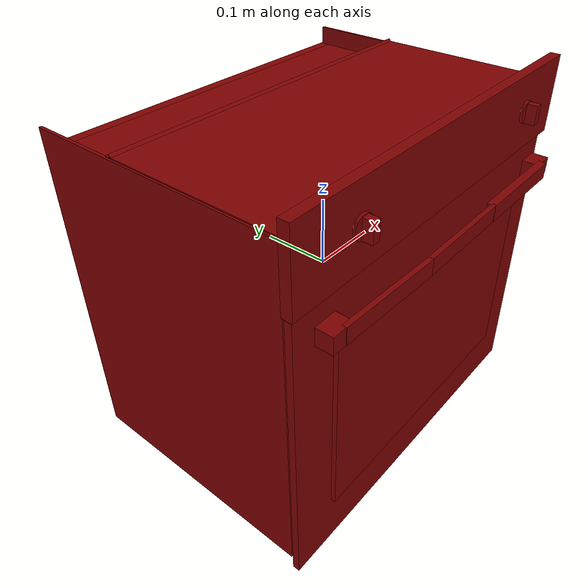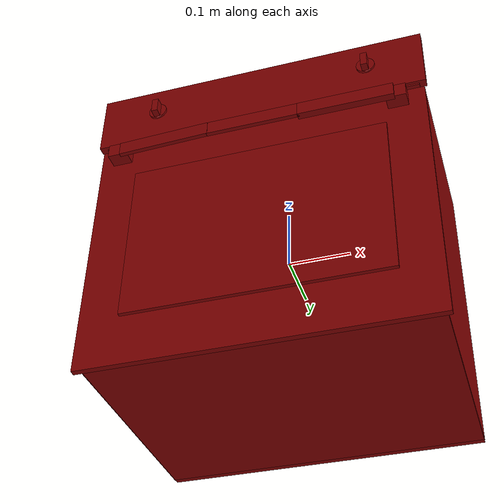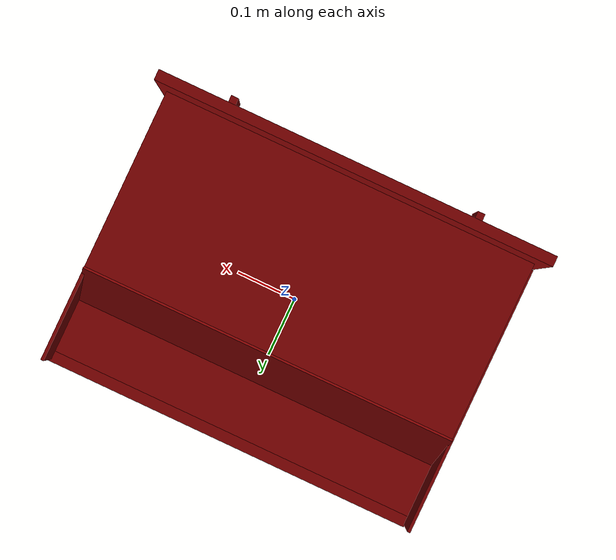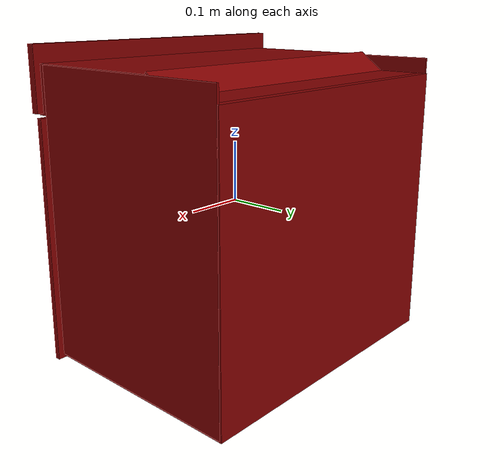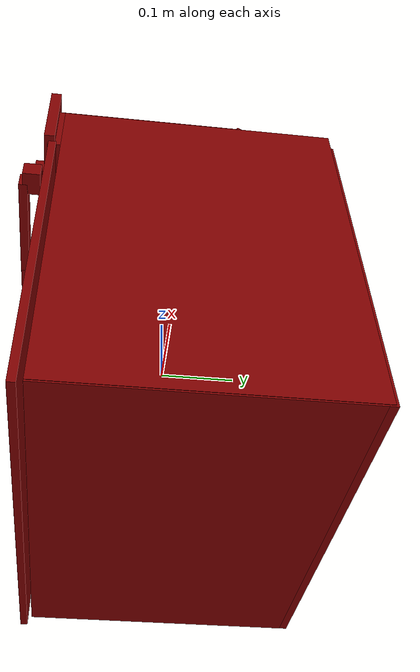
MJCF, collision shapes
<?xml version='1.0' encoding='UTF-8'?>
<mujoco model="model">
  <option timestep="0.002" gravity="0.0 0.0 -9.81"/>
  <compiler angle="radian"/>
  <asset>
    <mesh file="visuals/door.obj" name="door_vis"/>
    <mesh file="visuals/door_Clear.obj" name="door_Clear_vis"/>
    <mesh file="visuals/knob_temp.obj" name="knob_temp_vis"/>
    <mesh file="visuals/knob_time.obj" name="knob_time_vis"/>
    <mesh file="visuals/Body001.obj" name="Body001_vis"/>
    <mesh file="visuals/rack0.obj" name="rack0_vis"/>
    <texture file="visuals/T_BC001.png" name="Body001_material" type="2d"/>
    <material name="Body001_material" rgba="1 1 1 1.0" texture="Body001_material" shininess="0.1" specular="5"/>
    <texture file="visuals/T_BC001.png" name="door_material" type="2d"/>
    <material name="door_material" rgba="1 1 1 1.0" texture="door_material" shininess="0.1" specular="5"/>
    <texture file="visuals/T_BC001.png" name="door_Clear_material" type="2d"/>
    <material name="door_Clear_material" rgba="1 1 1 0.800000011920929" texture="door_Clear_material" shininess="0.1" specular="5"/>
    <texture file="visuals/T_BC001.png" name="knob_temp_material" type="2d"/>
    <material name="knob_temp_material" rgba="1 1 1 1.0" texture="knob_temp_material" shininess="0.1" specular="5"/>
    <texture file="visuals/T_BC001.png" name="knob_time_material" type="2d"/>
    <material name="knob_time_material" rgba="1 1 1 1.0" texture="knob_time_material" shininess="0.1" specular="5"/>
    <texture file="visuals/T_BC001.png" name="rack0_material" type="2d"/>
    <material name="rack0_material" rgba="1 1 1 1.0" texture="rack0_material" shininess="0.1" specular="5"/>
  </asset>
  <default>
    <default class="visual">
      <geom conaffinity="0" contype="0" group="1" type="mesh"/>
    </default>
    <default class="collision">
      <geom group="0" rgba="0.5 0 0 0.5"/>
    </default>
    <default class="spawn">
      <geom group="0" rgba="1 1 1 0.5" contype="0" conaffinity="0"/>
      <site group="0" rgba="1 1 1 0.5"/>
    </default>
    <default class="region">
      <geom group="1" conaffinity="0" contype="0" rgba="0 1 0 0"/>
    </default>
  </default>
  <worldbody>
    <body>
      <body name="object">
        <geom mesh="Body001_vis" type="mesh" solimp="0.998 0.998 0.001" solref="0.001 1" friction="0.95 0.3 0.1" class="visual" material="Body001_material"/>
        <geom class="collision" type="box" pos="-0.2544620633125305 0.023176802322268486 -0.006310977041721344" size="0.0020570470951497555 0.18197987973690033 0.24050770699977875" quat="1.0 0.0 0.0 0.0"/>
        <geom class="collision" type="box" pos="0.25352543592453003 0.02317679673433304 -0.0063109504990279675" size="0.002057039877399802 0.18198014795780182 0.24050800502300262" quat="1.0 0.0 0.0 0.0"/>
        <geom class="collision" type="box" pos="0.0005653143161907792 0.20080973207950592 -0.020130107179284096" size="0.25446319580078125 0.007349087856709957 0.22881145775318146" quat="1.0 0.0 0.0 0.0"/>
        <geom class="collision" type="box" pos="0.000565314432606101 0.160851389169693 0.18146006762981415" size="0.2544921934604645 0.0444716140627861 0.027219019830226898" quat="1.0 0.0 0.0 0.0"/>
        <geom class="collision" type="box" pos="0.000565314432606101 0.09966830164194107 0.22004328668117523" size="0.003014849964529276 0.2544921934604645 0.028582042083144188" quat="0.629673421382904 0.32173192501068115 0.32173189520835876 -0.6296733617782593"/>
        <geom class="collision" type="box" pos="0.0005653135012835264 -0.04897317662835121 0.19615307450294495" size="0.2544921934604645 0.12711374461650848 0.03950924798846245" quat="1.0 0.0 0.0 0.0"/>
        <geom class="collision" type="box" pos="-0.00042295793537050486 -0.1732904613018036 0.21226297318935394" size="0.26582059264183044 0.006865283008664846 0.05265137180685997" quat="1.0 0.0 0.0 0.0"/>
        <geom class="collision" type="box" pos="0.0005653519765473902 0.019687483087182045 -0.24789226055145264" size="0.25451263785362244 0.17850933969020844 0.0010494127636775374" quat="1.0 0.0 0.0 0.0"/>
        <geom class="collision" type="box" pos="-0.24748526513576508 0.1498759388923645 -0.043011587113142014" size="0.003164632013067603 0.0026933911722153425 0.1804380863904953" quat="1.0 0.0 0.0 0.0"/>
        <geom class="collision" type="box" pos="-0.24748526513576508 -0.11828050762414932 -0.043011587113142014" size="0.003164628054946661 0.0026933911722153425 0.1804378479719162" quat="1.0 0.0 0.0 0.0"/>
        <geom class="collision" type="box" pos="-0.21665705740451813 0.01477318350225687 -0.20392325520515442" size="0.002550966339185834 0.13574707508087158 0.0023388429544866085" quat="1.0 0.0 0.0 0.0"/>
        <geom class="collision" type="box" pos="-0.23302842676639557 0.1502387821674347 -0.20392325520515442" size="0.012358578853309155 0.0020729394163936377 0.00233883922919631" quat="1.0 0.0 0.0 0.0"/>
        <geom class="collision" type="box" pos="-0.23302842676639557 -0.1191842183470726 -0.20392325520515442" size="0.012358563020825386 0.0020729394163936377 0.0023388355039060116" quat="1.0 0.0 0.0 0.0"/>
        <geom class="collision" type="box" pos="-0.23302842676639557 -0.1191842183470726 -0.17641738057136536" size="0.012358547188341618 0.0020729394163936377 0.002338831778615713" quat="1.0 0.0 0.0 0.0"/>
        <geom class="collision" type="box" pos="-0.23302842676639557 0.1502387821674347 -0.17641738057136536" size="0.012358531355857849 0.0020729394163936377 0.0023388280533254147" quat="1.0 0.0 0.0 0.0"/>
        <geom class="collision" type="box" pos="-0.21665705740451813 0.015500597655773163 -0.1831607222557068" size="0.0025509465485811234 0.10936176776885986 0.002338824328035116" quat="1.0 0.0 0.0 0.0"/>
        <geom class="collision" type="box" pos="-0.21665705740451813 0.015500597655773163 -0.11657079309225082" size="0.0025509425904601812 0.10936175286769867 0.0023388206027448177" quat="1.0 0.0 0.0 0.0"/>
        <geom class="collision" type="box" pos="-0.23302842676639557 0.1502387821674347 -0.1098274514079094" size="0.012358483858406544 0.0020729394163936377 0.0023388168774545193" quat="1.0 0.0 0.0 0.0"/>
        <geom class="collision" type="box" pos="-0.23302842676639557 -0.1191842183470726 -0.1098274514079094" size="0.012358468025922775 0.0020729394163936377 0.002338813152164221" quat="1.0 0.0 0.0 0.0"/>
        <geom class="collision" type="box" pos="-0.23302842676639557 -0.1191842183470726 -0.14427690207958221" size="0.012358452193439007 0.0020729394163936377 0.0023388094268739223" quat="1.0 0.0 0.0 0.0"/>
        <geom class="collision" type="box" pos="-0.23302842676639557 0.1502387821674347 -0.14427690207958221" size="0.012358436360955238 0.0020729394163936377 0.002338805701583624" quat="1.0 0.0 0.0 0.0"/>
        <geom class="collision" type="box" pos="-0.21665705740451813 0.01477318350225687 -0.14427690207958221" size="0.0025509227998554707 0.13574707508087158 0.0023388019762933254" quat="1.0 0.0 0.0 0.0"/>
        <geom class="collision" type="box" pos="-0.21665705740451813 0.01477318350225687 0.00997750274837017" size="0.0025509188417345285 0.13574707508087158 0.002338798251003027" quat="1.0 0.0 0.0 0.0"/>
        <geom class="collision" type="box" pos="-0.23302842676639557 0.1502387821674347 0.00997750274837017" size="0.012358388863503933 0.0020729394163936377 0.0023387945257127285" quat="1.0 0.0 0.0 0.0"/>
        <geom class="collision" type="box" pos="-0.23302842676639557 -0.1191842183470726 0.00997750274837017" size="0.012358373031020164 0.0020729394163936377 0.00233879080042243" quat="1.0 0.0 0.0 0.0"/>
        <geom class="collision" type="box" pos="-0.23302842676639557 -0.1191842183470726 0.04442695528268814" size="0.012358357198536396 0.0020729394163936377 0.0023387870751321316" quat="1.0 0.0 0.0 0.0"/>
        <geom class="collision" type="box" pos="-0.23302842676639557 0.1502387821674347 0.04442695528268814" size="0.012358341366052628 0.0020729394163936377 0.002338783349841833" quat="1.0 0.0 0.0 0.0"/>
        <geom class="collision" type="box" pos="-0.21665705740451813 0.015500597655773163 0.0385490320622921" size="0.002550899051129818 0.10936175286769867 0.0023387796245515347" quat="1.0 0.0 0.0 0.0"/>
        <geom class="collision" type="box" pos="-0.21665705740451813 0.015500597655773163 -0.03830826282501221" size="0.002550895093008876 0.10936176776885986 0.002338775899261236" quat="1.0 0.0 0.0 0.0"/>
        <geom class="collision" type="box" pos="-0.23302842676639557 0.1502387821674347 -0.031564921140670776" size="0.012358293868601322 0.0020729394163936377 0.0023387721739709377" quat="1.0 0.0 0.0 0.0"/>
        <geom class="collision" type="box" pos="-0.23302842676639557 -0.1191842183470726 -0.031564921140670776" size="0.012358278036117554 0.0020729394163936377 0.0023387684486806393" quat="1.0 0.0 0.0 0.0"/>
        <geom class="collision" type="box" pos="-0.23302842676639557 -0.1191842183470726 -0.06716689467430115" size="0.012358262203633785 0.0020729394163936377 0.002338764723390341" quat="1.0 0.0 0.0 0.0"/>
        <geom class="collision" type="box" pos="-0.23302842676639557 0.1502387821674347 -0.06716689467430115" size="0.012358246371150017 0.0020729394163936377 0.0023387609981000423" quat="1.0 0.0 0.0 0.0"/>
        <geom class="collision" type="box" pos="-0.21665705740451813 0.01477318350225687 -0.06716689467430115" size="0.002550875535234809 0.13574707508087158 0.002338757272809744" quat="1.0 0.0 0.0 0.0"/>
        <geom class="collision" type="box" pos="-0.21665705740451813 0.01477318350225687 0.07496404647827148" size="0.002550871577113867 0.13574707508087158 0.0023387533146888018" quat="1.0 0.0 0.0 0.0"/>
        <geom class="collision" type="box" pos="-0.23302842676639557 0.1502387821674347 0.07496404647827148" size="0.012358198873698711 0.0020729394163936377 0.0023387495893985033" quat="1.0 0.0 0.0 0.0"/>
        <geom class="collision" type="box" pos="-0.23302842676639557 -0.1191842183470726 0.07496404647827148" size="0.012358183041214943 0.0020729394163936377 0.002338745864108205" quat="1.0 0.0 0.0 0.0"/>
        <geom class="collision" type="box" pos="-0.21665705740451813 0.015500597655773163 0.09847967326641083" size="0.0025508597027510405 0.10936175286769867 0.0023387421388179064" quat="1.0 0.0 0.0 0.0"/>
        <geom class="collision" type="box" pos="-0.23302842676639557 0.1502387821674347 0.10435759276151657" size="0.012358151376247406 0.0020729394163936377 0.002338738413527608" quat="1.0 0.0 0.0 0.0"/>
        <geom class="collision" type="box" pos="-0.23302842676639557 -0.1191842183470726 0.10435759276151657" size="0.012358135543763638 0.0020729394163936377 0.0023387346882373095" quat="1.0 0.0 0.0 0.0"/>
        <geom class="collision" type="box" pos="0.23276957869529724 -0.1191842257976532 0.10435760021209717" size="0.012358119711279869 0.0020729394163936377 0.002338730962947011" quat="1.0 0.0 0.0 0.0"/>
        <geom class="collision" type="box" pos="0.23276957869529724 0.1502387821674347 0.10435760021209717" size="0.0123581038787961 0.0020729394163936377 0.0023387272376567125" quat="1.0 0.0 0.0 0.0"/>
        <geom class="collision" type="box" pos="0.2163982093334198 0.015500589273869991 0.09847967326641083" size="0.00255083991214633 0.10936175286769867 0.002338723512366414" quat="1.0 0.0 0.0 0.0"/>
        <geom class="collision" type="box" pos="0.23276957869529724 -0.1191842257976532 0.07496404647827148" size="0.012358072213828564 0.0020729394163936377 0.0023387197870761156" quat="1.0 0.0 0.0 0.0"/>
        <geom class="collision" type="box" pos="0.23276957869529724 0.1502387821674347 0.07496404647827148" size="0.012358056381344795 0.0020729394163936377 0.002338716061785817" quat="1.0 0.0 0.0 0.0"/>
        <geom class="collision" type="box" pos="0.2163982093334198 0.014773176051676273 0.07496404647827148" size="0.0025508280377835035 0.13574707508087158 0.0023387123364955187" quat="1.0 0.0 0.0 0.0"/>
        <geom class="collision" type="box" pos="0.2163982093334198 0.01477318350225687 -0.06716689467430115" size="0.0025508240796625614 0.13574707508087158 0.0023387086112052202" quat="1.0 0.0 0.0 0.0"/>
        <geom class="collision" type="box" pos="0.23276957869529724 0.1502387821674347 -0.06716689467430115" size="0.012358009815216064 0.0020729394163936377 0.0023387048859149218" quat="1.0 0.0 0.0 0.0"/>
        <geom class="collision" type="box" pos="0.23276957869529724 -0.1191842257976532 -0.06716689467430115" size="0.012357993982732296 0.0020729394163936377 0.0023387011606246233" quat="1.0 0.0 0.0 0.0"/>
        <geom class="collision" type="box" pos="0.23276957869529724 -0.1191842257976532 -0.031564921140670776" size="0.012357978150248528 0.0020729394163936377 0.002338697435334325" quat="1.0 0.0 0.0 0.0"/>
        <geom class="collision" type="box" pos="0.23276957869529724 0.1502387821674347 -0.031564921140670776" size="0.012357962317764759 0.0020729394163936377 0.0023386937100440264" quat="1.0 0.0 0.0 0.0"/>
        <geom class="collision" type="box" pos="0.2163982093334198 0.015500590205192566 -0.03830826282501221" size="0.002550804289057851 0.10936176776885986 0.002338689984753728" quat="1.0 0.0 0.0 0.0"/>
        <geom class="collision" type="box" pos="0.2163982093334198 0.015500589273869991 0.0385490357875824" size="0.0025508003309369087 0.10936175286769867 0.0023386862594634295" quat="1.0 0.0 0.0 0.0"/>
        <geom class="collision" type="box" pos="0.23276957869529724 0.1502387821674347 0.04442696273326874" size="0.012357914820313454 0.0020729394163936377 0.002338682534173131" quat="1.0 0.0 0.0 0.0"/>
        <geom class="collision" type="box" pos="0.23276957869529724 -0.1191842257976532 0.04442696273326874" size="0.012357898987829685 0.0020729394163936377 0.0023386788088828325" quat="1.0 0.0 0.0 0.0"/>
        <geom class="collision" type="box" pos="0.23276957869529724 -0.1191842257976532 0.009977500885725021" size="0.012357883155345917 0.0020729394163936377 0.002338675083592534" quat="1.0 0.0 0.0 0.0"/>
        <geom class="collision" type="box" pos="0.23276957869529724 0.1502387821674347 0.009977500885725021" size="0.012357867322862148 0.0020729394163936377 0.0023386713583022356" quat="1.0 0.0 0.0 0.0"/>
        <geom class="collision" type="box" pos="0.2163982093334198 0.014773176051676273 0.009977500885725021" size="0.002550780540332198 0.13574707508087158 0.002338667633011937" quat="1.0 0.0 0.0 0.0"/>
        <geom class="collision" type="box" pos="0.2163982093334198 0.014773176051676273 -0.14427690207958221" size="0.002550776582211256 0.13574707508087158 0.0023386639077216387" quat="1.0 0.0 0.0 0.0"/>
        <geom class="collision" type="box" pos="0.23276957869529724 0.1502387821674347 -0.14427690207958221" size="0.012357819825410843 0.0020729394163936377 0.0023386601824313402" quat="1.0 0.0 0.0 0.0"/>
        <geom class="collision" type="box" pos="0.23276957869529724 -0.1191842257976532 -0.14427690207958221" size="0.012357803992927074 0.0020729394163936377 0.0023386564571410418" quat="1.0 0.0 0.0 0.0"/>
        <geom class="collision" type="box" pos="0.23276957869529724 -0.1191842257976532 -0.1098274514079094" size="0.012357788160443306 0.0020729394163936377 0.0023386527318507433" quat="1.0 0.0 0.0 0.0"/>
        <geom class="collision" type="box" pos="0.23276957869529724 0.1502387821674347 -0.1098274514079094" size="0.012357772327959538 0.0020729394163936377 0.002338649006560445" quat="1.0 0.0 0.0 0.0"/>
        <geom class="collision" type="box" pos="0.2163982093334198 0.015500589273869991 -0.11657078564167023" size="0.0025507567916065454 0.10936175286769867 0.0023386452812701464" quat="1.0 0.0 0.0 0.0"/>
        <geom class="collision" type="box" pos="0.2163982093334198 0.015500590205192566 -0.1831607222557068" size="0.0025507528334856033 0.10936176776885986 0.002338641555979848" quat="1.0 0.0 0.0 0.0"/>
        <geom class="collision" type="box" pos="0.23276957869529724 0.1502387821674347 -0.17641738057136536" size="0.012357724830508232 0.0020729394163936377 0.0023386378306895494" quat="1.0 0.0 0.0 0.0"/>
        <geom class="collision" type="box" pos="0.23276957869529724 -0.1191842257976532 -0.17641738057136536" size="0.012357708998024464 0.0020729394163936377 0.002338634105399251" quat="1.0 0.0 0.0 0.0"/>
        <geom class="collision" type="box" pos="0.23276957869529724 -0.1191842257976532 -0.20392325520515442" size="0.012357693165540695 0.0020729394163936377 0.002338630147278309" quat="1.0 0.0 0.0 0.0"/>
        <geom class="collision" type="box" pos="0.23276957869529724 0.1502387821674347 -0.20392325520515442" size="0.012357677333056927 0.0020729394163936377 0.0023386264219880104" quat="1.0 0.0 0.0 0.0"/>
        <geom class="collision" type="box" pos="0.2163982093334198 0.01477318350225687 -0.20392325520515442" size="0.0025507330428808928 0.13574707508087158 0.002338622696697712" quat="1.0 0.0 0.0 0.0"/>
        <geom class="collision" type="box" pos="0.24722640216350555 -0.11828050762414932 -0.043011587113142014" size="0.0031643868423998356 0.0026933911722153425 0.18042327463626862" quat="1.0 0.0 0.0 0.0"/>
        <geom class="collision" type="box" pos="0.24722640216350555 0.1498759388923645 -0.043011587113142014" size="0.0031643828842788935 0.0026933911722153425 0.18042303621768951" quat="1.0 0.0 0.0 0.0"/>
        <body name="door">
          <joint axis="1.0 0.0 0.0" pos="0.0009000943973660469 -0.1736081838607788 -0.257359366863966" limited="true" name="door_joint" range="0.0 1.15" type="hinge" damping="1" frictionloss="1" armature="1" stiffness="2"/>
          <geom mesh="door_vis" type="mesh" solimp="0.998 0.998 0.001" solref="0.001 1" friction="0.95 0.3 0.1" class="visual" material="door_material"/>
          <geom class="collision" type="box" pos="0.0009000943973660469 -0.168915256857872 -0.052469637244939804" size="0.2612549066543579 0.004692927002906799 0.20488972961902618" quat="1.0 0.0 0.0 0.0" name="door_main"/>
          <geom class="collision" type="box" pos="0.0018851065542548895 -0.17674724757671356 -0.04527357220649719" size="0.19902880489826202 0.0031392890959978104 0.132785364985466" quat="1.0 0.0 0.0 0.0"/>
          <geom class="collision" type="box" pos="0.22110596299171448 -0.19176335632801056 0.1247517466545105" size="0.01560712605714798 0.011398117989301682 0.011398117989301682" quat="1.0 0.0 0.0 0.0"/>
          <geom class="collision" type="box" pos="-0.22049954533576965 -0.19176335632801056 0.1247517466545105" size="0.015607141889631748 0.011398130096495152 0.011398130096495152" quat="1.0 0.0 0.0 0.0"/>
          <geom class="collision" type="box" pos="0.001501724123954773 -0.20500588417053223 0.1247517466545105" size="0.0735284686088562 0.0032432442530989647 0.011398712173104286" quat="1.0 0.0 0.0 0.0" name="door_handle_main"/>
          <geom class="collision" type="box" pos="0.1457395702600479 -0.20274510979652405 0.1247517466545105" size="0.07359613478183746 0.005732421297580004 0.011398712173104286" quat="1.0 0.0 0.0 0.0"/>
          <geom class="collision" type="box" pos="-0.14361155033111572 -0.20300555229187012 0.1247517466545105" size="0.0735284686088562 0.0032432442530989647 0.011398712173104286" quat="0.999872088432312 0.0 -0.0 -0.01599567010998726"/>
          <body name="door_Clear">
            <geom mesh="door_Clear_vis" type="mesh" solimp="0.998 0.998 0.001" solref="0.001 1" friction="0.95 0.3 0.1" class="visual" material="door_Clear_material"/>
            <geom class="collision" type="box" pos="0.0018851065542548895 -0.17674724757671356 -0.04527357220649719" size="0.19902880489826202 0.0031392890959978104 0.132785364985466" quat="1.0 0.0 0.0 0.0"/>
          </body>
        </body>
        <body name="knob_temp">
          <joint axis="0.0 1.0 0.0" pos="-0.16855961084365845 -0.1892067939043045 0.21480366587638855" limited="true" name="knob_temp_joint" range="0.0 5.602506898901798" type="hinge" damping="0.05" armature="1" frictionloss="0.75"/>
          <geom mesh="knob_temp_vis" type="mesh" solimp="0.998 0.998 0.001" solref="0.001 1" friction="0.95 0.3 0.1" class="visual" material="knob_temp_material"/>
          <geom class="collision" type="cylinder" pos="-0.16874589025974274 -0.1833120882511139 0.214882954955101" size="0.014560258947312832 0.0017202203162014484" quat="0.7071067094802856 0.7071068286895752 0.0 0.0" friction="100 0.5 0.01"/>
          <geom class="collision" type="box" pos="-0.1685321033000946 -0.19157104194164276 0.2150518298149109" size="0.005066616926342249 0.006823244970291853 0.012592457234859467" quat="1.0 0.0 0.0 0.0" name="knob_temp_main" friction="100 0.5 0.01"/>
        </body>
        <body name="knob_time">
          <joint axis="0.0 1.0 0.0" pos="0.17623311281204224 -0.1892067939043045 0.21548950672149658" limited="true" name="knob_time_joint" range="-3.141592653589793 0.9948376736367678" type="hinge" damping="0.05" armature="1" frictionloss="0.75"/>
          <geom mesh="knob_time_vis" type="mesh" solimp="0.998 0.998 0.001" solref="0.001 1" friction="0.95 0.3 0.1" class="visual" material="knob_time_material"/>
          <geom class="collision" type="cylinder" pos="0.17623311281204224 -0.1833120882511139 0.21548950672149658" size="0.014560258947312832 0.0017202203162014484" quat="0.7071067094802856 0.7071068286895752 0.0 0.0" friction="100 0.5 0.01"/>
          <geom class="collision" type="box" pos="0.17623311281204224 -0.19157104194164276 0.21548950672149658" size="0.005066616926342249 0.006823244970291853 0.012592457234859467" quat="1.0 0.0 0.0 0.0" name="knob_time_main" friction="100 0.5 0.01"/>
        </body>
        <body name="rack0">
          <geom class="region" name="reg_rack0" type="box" pos="-0.0001293569803237915 0.020383965224027634 0.022574447095394135" size="0.2085575441122055 0.12269179692864418 0.11763363128900528"/>
          <joint axis="0.0 -1.0 0.0" pos="-0.0008307830430567265 0.020319785922765732 -0.1150580495595932" limited="true" name="rack0_joint" range="0.0 0.225" type="slide" damping="1" frictionloss="1" armature=".01" stiffness="0.05"/>
          <geom mesh="rack0_vis" type="mesh" solimp="0.998 0.998 0.001" solref="0.001 1" friction="0.95 0.3 0.1" class="visual" material="rack0_material"/>
          <geom class="collision" type="box" pos="-0.0006766723236069083 0.020319797098636627 -0.10297143459320068" size="0.23616035282611847 0.12719988822937012 0.0033169181551784277" quat="1.0 0.0 0.0 0.0"/>
          <geom class="collision" type="box" pos="0.18381276726722717 -0.09597183763980865 -0.11820642650127411" size="0.015721142292022705 0.000929249741602689 0.011941387318074703" quat="1.0 0.0 0.0 0.0"/>
          <geom class="collision" type="box" pos="-0.184906005859375 -0.09597183763980865 -0.11820642650127411" size="0.015721160918474197 0.000929249741602689 0.011941398493945599" quat="1.0 0.0 0.0 0.0"/>
        </body>
        <geom class="region" name="reg_int" type="box" pos="0.00027339160442352295 0.025984928011894226 -0.050483524799346924" size="0.20893291926383972 0.16298641061782837 0.19089115953445435"/>
        <geom class="region" name="reg_main" type="box" pos="-0.0004229483020026237 0.013647045008838177 1.3520306652026193e-08" size="0.26682059264183045 0.195512277841568 0.26591445302963257"/>
      </body>
    </body>
  </worldbody>
  <actuator>
    <motor name="door_joint_actuator" joint="door_joint" gear="50"/>
    <motor name="knob_temp_joint_actuator" joint="knob_temp_joint" gear="50"/>
    <motor name="knob_time_joint_actuator" joint="knob_time_joint" gear="50"/>
    <motor name="rack0_joint_actuator" joint="rack0_joint" gear="50"/>
  </actuator>
</mujoco>
